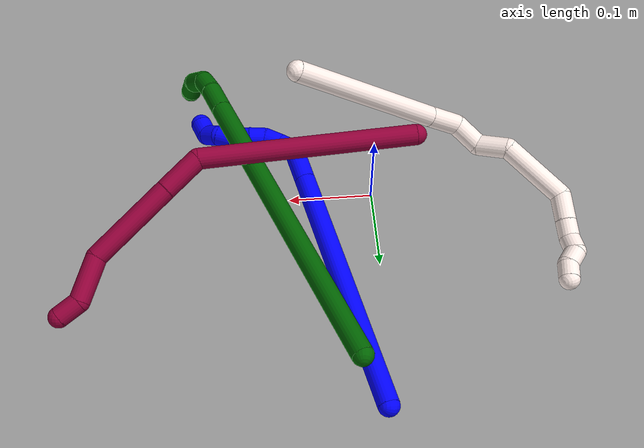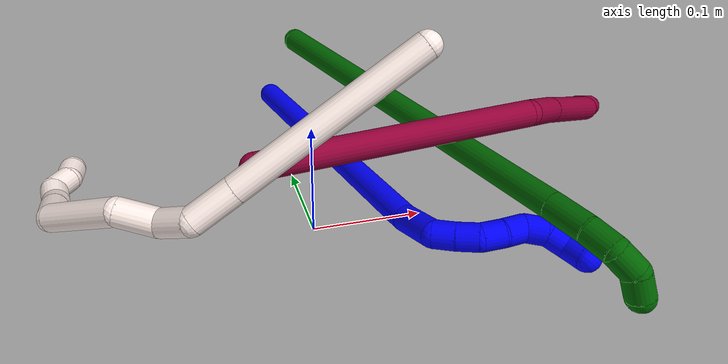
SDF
<sdf version="1.7">
 <world name="default">
  <model name="photoneo_s_sensor">
   <static>1</static>
   <pose>0 0 2 1.57079 1.57079 3.14159</pose>
   <link name="link">
    <inertial><mass>0.1</mass></inertial>
    <sensor name="sensor" type="depth">
     <update_rate>30</update_rate>
     <camera>
      <horizontal_fov>1.22</horizontal_fov>
      <image><width>1920</width><height>1200</height><format>B8G8R8</format></image>
      <clip><near>0.1</near><far>4</far></clip>
      <depth_camera><output>points</output></depth_camera>
     </camera>
     <plugin name="camera_plugin" filename="libgazebo_ros_depth_camera.so">
      <baseline>0.2</baseline>
      <alwaysOn>1</alwaysOn>
      <updateRate>0.0</updateRate>
      <cameraName>camera_ir</cameraName>
      <imageTopicName>/camera/color/image_raw</imageTopicName>
      <cameraInfoTopicName>/camera/color/camera_info</cameraInfoTopicName>
      <depthImageTopicName>/camera/depth/image_raw</depthImageTopicName>
      <depthImageCameraInfoTopicName>/camera/depth/camera_info</depthImageCameraInfoTopicName>
      <pointCloudTopicName>/camera/depth/points</pointCloudTopicName>
      <frameName>fr_optical</frameName>
      <pointCloudCutoff>0.1</pointCloudCutoff>
      <pointCloudCutoffMax>2.0</pointCloudCutoffMax>
      <distortionK1>0</distortionK1>
      <distortionK2>0</distortionK2>
      <distortionK3>0</distortionK3>
      <distortionT1>0</distortionT1>
      <distortionT2>0</distortionT2>
      <CxPrime>0</CxPrime>
      <Cx>0</Cx>
      <Cy>0</Cy>
      <focalLength>0</focalLength>
      <hackBaseline>0</hackBaseline>
     </plugin>
    </sensor>
   </link>
  </model>
  <model name="bin">
   <static>1</static>
   <link name="bottom">
    <collision name="collision-bottom">
     <pose>0 0 -0.01 0 -0 0</pose>
     <geometry><box><size>0.8 0.6 0.02</size></box></geometry>
     <surface>
      <friction><ode><mu>100</mu><mu2>100</mu2></ode></friction>
      <contact><collide_bitmask>65535</collide_bitmask></contact>
     </surface>
    </collision>
   </link>
   <link name="west_wall">
    <collision name="collision-west_wall">
     <pose>-0.41 0 0.1 0 -0 0</pose>
     <geometry><box><size>0.02 0.6 0.2</size></box></geometry>
     <surface>
      <friction><ode><mu>100</mu><mu2>100</mu2></ode></friction>
      <contact><collide_bitmask>65535</collide_bitmask></contact>
     </surface>
    </collision>
   </link>
   <link name="east_wall">
    <collision name="collision-east_wall">
     <pose>0.41 0 0.1 0 -0 0</pose>
     <geometry><box><size>0.02 0.6 0.2</size></box></geometry>
     <surface>
      <friction><ode><mu>100</mu><mu2>100</mu2></ode></friction>
      <contact><collide_bitmask>65535</collide_bitmask></contact>
     </surface>
    </collision>
   </link>
   <link name="south_wall">
    <collision name="collision-south_wall">
     <pose>0 -0.31 0.1 0 -0 0</pose>
     <geometry><box><size>0.8 0.02 0.2</size></box></geometry>
     <surface>
      <friction><ode><mu>100</mu><mu2>100</mu2></ode></friction>
      <contact><collide_bitmask>65535</collide_bitmask></contact>
     </surface>
    </collision>
   </link>
   <link name="north_wall">
    <collision name="collision-north_wall">
     <pose>0 0.31 0.1 0 -0 0</pose>
     <geometry><box><size>0.8 0.02 0.2</size></box></geometry>
     <surface>
      <friction><ode><mu>100</mu><mu2>100</mu2></ode></friction>
      <contact><collide_bitmask>65535</collide_bitmask></contact>
     </surface>
    </collision>
   </link>
  </model>
  <model name="1">
   <static>0</static>
   <link name="1">
    <collision name="collision-cylinder-e_1_1_4">
     <pose>0.009804 -0.155916 0.025654 1.40772 0.061969 0.052611</pose>
     <geometry><cylinder><radius>0.0125</radius><length>0.316633</length></cylinder></geometry>
     <surface>
      <friction><ode><mu>1.16</mu><mu2>1.16</mu2><slip1>0</slip1><slip2>0</slip2></ode></friction>
      <contact><ode><kp>1e+06</kp><kd>1</kd><max_vel>0</max_vel><min_depth>0.001</min_depth></ode></contact>
     </surface>
    </collision>
    <visual name="visual-cylinder-e_1_1_4">
     <pose>0.009804 -0.155916 0.025654 1.40772 0.061969 0.052611</pose>
     <geometry><cylinder><radius>0.0125</radius><length>0.316633</length></cylinder></geometry>
     <material><ambient>0 0 1 1</ambient></material>
    </visual>
    <collision name="collision-cylinder-e_2_4_5">
     <pose>0.023618 -0.333019 0.052096 1.53367 0.186908 0.180133</pose>
     <geometry><cylinder><radius>0.0125</radius><length>0.043155</length></cylinder></geometry>
     <surface>
      <friction><ode><mu>1.16</mu><mu2>1.16</mu2><slip1>0</slip1><slip2>0</slip2></ode></friction>
      <contact><ode><kp>1e+06</kp><kd>1</kd><max_vel>0</max_vel><min_depth>0.001</min_depth></ode></contact>
     </surface>
    </collision>
    <visual name="visual-cylinder-e_2_4_5">
     <pose>0.023618 -0.333019 0.052096 1.53367 0.186908 0.180133</pose>
     <geometry><cylinder><radius>0.0125</radius><length>0.043155</length></cylinder></geometry>
     <material><ambient>0 0 1 1</ambient></material>
    </visual>
    <collision name="collision-cylinder-e_3_5_6">
     <pose>0.024657 -0.362366 0.047778 2.12976 -0.299432 -0.531669</pose>
     <geometry><cylinder><radius>0.0125</radius><length>0.020146</length></cylinder></geometry>
     <surface>
      <friction><ode><mu>1.16</mu><mu2>1.16</mu2><slip1>0</slip1><slip2>0</slip2></ode></friction>
      <contact><ode><kp>1e+06</kp><kd>1</kd><max_vel>0</max_vel><min_depth>0.001</min_depth></ode></contact>
     </surface>
    </collision>
    <visual name="visual-cylinder-e_3_5_6">
     <pose>0.024657 -0.362366 0.047778 2.12976 -0.299432 -0.531669</pose>
     <geometry><cylinder><radius>0.0125</radius><length>0.020146</length></cylinder></geometry>
     <material><ambient>0 0 1 1</ambient></material>
    </visual>
    <collision name="collision-cylinder-e_4_6_7">
     <pose>0.018707 -0.378202 0.036944 2.21209 -0.301434 -0.588231</pose>
     <geometry><cylinder><radius>0.0125</radius><length>0.020063</length></cylinder></geometry>
     <surface>
      <friction><ode><mu>1.16</mu><mu2>1.16</mu2><slip1>0</slip1><slip2>0</slip2></ode></friction>
      <contact><ode><kp>1e+06</kp><kd>1</kd><max_vel>0</max_vel><min_depth>0.001</min_depth></ode></contact>
     </surface>
    </collision>
    <visual name="visual-cylinder-e_4_6_7">
     <pose>0.018707 -0.378202 0.036944 2.21209 -0.301434 -0.588231</pose>
     <geometry><cylinder><radius>0.0125</radius><length>0.020063</length></cylinder></geometry>
     <material><ambient>0 0 1 1</ambient></material>
    </visual>
    <collision name="collision-cylinder-e_5_7_8">
     <pose>0.011252 -0.390191 0.023378 2.63835 -0.464069 -1.4866</pose>
     <geometry><cylinder><radius>0.0125</radius><length>0.020002</length></cylinder></geometry>
     <surface>
      <friction><ode><mu>1.16</mu><mu2>1.16</mu2><slip1>0</slip1><slip2>0</slip2></ode></friction>
      <contact><ode><kp>1e+06</kp><kd>1</kd><max_vel>0</max_vel><min_depth>0.001</min_depth></ode></contact>
     </surface>
    </collision>
    <visual name="visual-cylinder-e_5_7_8">
     <pose>0.011252 -0.390191 0.023378 2.63835 -0.464069 -1.4866</pose>
     <geometry><cylinder><radius>0.0125</radius><length>0.020002</length></cylinder></geometry>
     <material><ambient>0 0 1 1</ambient></material>
    </visual>
    <collision name="collision-cylinder-e_6_8_9">
     <pose>0.001539 -0.397184 0.007456 2.82168 -0.55113 -2.1046</pose>
     <geometry><cylinder><radius>0.0125</radius><length>0.020001</length></cylinder></geometry>
     <surface>
      <friction><ode><mu>1.16</mu><mu2>1.16</mu2><slip1>0</slip1><slip2>0</slip2></ode></friction>
      <contact><ode><kp>1e+06</kp><kd>1</kd><max_vel>0</max_vel><min_depth>0.001</min_depth></ode></contact>
     </surface>
    </collision>
    <visual name="visual-cylinder-e_6_8_9">
     <pose>0.001539 -0.397184 0.007456 2.82168 -0.55113 -2.1046</pose>
     <geometry><cylinder><radius>0.0125</radius><length>0.020001</length></cylinder></geometry>
     <material><ambient>0 0 1 1</ambient></material>
    </visual>
    <collision name="collision-cylinder-e_7_9_10">
     <pose>-0.008178 -0.407282 -0.005619 2.16267 -0.464552 -0.835798</pose>
     <geometry><cylinder><radius>0.0125</radius><length>0.02</length></cylinder></geometry>
     <surface>
      <friction><ode><mu>1.16</mu><mu2>1.16</mu2><slip1>0</slip1><slip2>0</slip2></ode></friction>
      <contact><ode><kp>1e+06</kp><kd>1</kd><max_vel>0</max_vel><min_depth>0.001</min_depth></ode></contact>
     </surface>
    </collision>
    <visual name="visual-cylinder-e_7_9_10">
     <pose>-0.008178 -0.407282 -0.005619 2.16267 -0.464552 -0.835798</pose>
     <geometry><cylinder><radius>0.0125</radius><length>0.02</length></cylinder></geometry>
     <material><ambient>0 0 1 1</ambient></material>
    </visual>
    <collision name="collision-cylinder-e_8_10_11">
     <pose>-0.019474 -0.421891 -0.011972 1.75847 -0.749908 -0.887469</pose>
     <geometry><cylinder><radius>0.0125</radius><length>0.02</length></cylinder></geometry>
     <surface>
      <friction><ode><mu>1.16</mu><mu2>1.16</mu2><slip1>0</slip1><slip2>0</slip2></ode></friction>
      <contact><ode><kp>1e+06</kp><kd>1</kd><max_vel>0</max_vel><min_depth>0.001</min_depth></ode></contact>
     </surface>
    </collision>
    <visual name="visual-cylinder-e_8_10_11">
     <pose>-0.019474 -0.421891 -0.011972 1.75847 -0.749908 -0.887469</pose>
     <geometry><cylinder><radius>0.0125</radius><length>0.02</length></cylinder></geometry>
     <material><ambient>0 0 1 1</ambient></material>
    </visual>
    <collision name="collision-cylinder-e_9_11_2">
     <pose>-0.026848 -0.439032 -0.012536 1.49042 -0.055934 -0.051612</pose>
     <geometry><cylinder><radius>0.0125</radius><length>0.02</length></cylinder></geometry>
     <surface>
      <friction><ode><mu>1.16</mu><mu2>1.16</mu2><slip1>0</slip1><slip2>0</slip2></ode></friction>
      <contact><ode><kp>1e+06</kp><kd>1</kd><max_vel>0</max_vel><min_depth>0.001</min_depth></ode></contact>
     </surface>
    </collision>
    <visual name="visual-cylinder-e_9_11_2">
     <pose>-0.026848 -0.439032 -0.012536 1.49042 -0.055934 -0.051612</pose>
     <geometry><cylinder><radius>0.0125</radius><length>0.02</length></cylinder></geometry>
     <material><ambient>0 0 1 1</ambient></material>
    </visual>
    <collision name="collision-sphere-2">
     <pose>-0.027408 -0.448984 -0.011734 0 -0 0</pose>
     <geometry><sphere><radius>0.0125</radius></sphere></geometry>
     <surface>
      <friction><ode><mu>1.16</mu><mu2>1.16</mu2><slip1>0</slip1><slip2>0</slip2></ode></friction>
      <contact><ode><kp>1e+06</kp><kd>1</kd><max_vel>0</max_vel><min_depth>0.001</min_depth></ode></contact>
     </surface>
    </collision>
    <visual name="visual-sphere-2">
     <pose>-0.027408 -0.448984 -0.011734 0 -0 0</pose>
     <geometry><sphere><radius>0.0125</radius></sphere></geometry>
     <material><ambient>0 0 1 1</ambient></material>
    </visual>
    <collision name="collision-sphere-11">
     <pose>-0.026289 -0.42908 -0.013338 0 -0 0</pose>
     <geometry><sphere><radius>0.0125</radius></sphere></geometry>
     <surface>
      <friction><ode><mu>1.16</mu><mu2>1.16</mu2><slip1>0</slip1><slip2>0</slip2></ode></friction>
      <contact><ode><kp>1e+06</kp><kd>1</kd><max_vel>0</max_vel><min_depth>0.001</min_depth></ode></contact>
     </surface>
    </collision>
    <visual name="visual-sphere-11">
     <pose>-0.026289 -0.42908 -0.013338 0 -0 0</pose>
     <geometry><sphere><radius>0.0125</radius></sphere></geometry>
     <material><ambient>0 0 1 1</ambient></material>
    </visual>
    <collision name="collision-sphere-10">
     <pose>-0.012658 -0.414702 -0.010607 0 -0 0</pose>
     <geometry><sphere><radius>0.0125</radius></sphere></geometry>
     <surface>
      <friction><ode><mu>1.16</mu><mu2>1.16</mu2><slip1>0</slip1><slip2>0</slip2></ode></friction>
      <contact><ode><kp>1e+06</kp><kd>1</kd><max_vel>0</max_vel><min_depth>0.001</min_depth></ode></contact>
     </surface>
    </collision>
    <visual name="visual-sphere-10">
     <pose>-0.012658 -0.414702 -0.010607 0 -0 0</pose>
     <geometry><sphere><radius>0.0125</radius></sphere></geometry>
     <material><ambient>0 0 1 1</ambient></material>
    </visual>
    <collision name="collision-sphere-9">
     <pose>-0.003697 -0.399863 -0.000631 0 -0 0</pose>
     <geometry><sphere><radius>0.0125</radius></sphere></geometry>
     <surface>
      <friction><ode><mu>1.16</mu><mu2>1.16</mu2><slip1>0</slip1><slip2>0</slip2></ode></friction>
      <contact><ode><kp>1e+06</kp><kd>1</kd><max_vel>0</max_vel><min_depth>0.001</min_depth></ode></contact>
     </surface>
    </collision>
    <visual name="visual-sphere-9">
     <pose>-0.003697 -0.399863 -0.000631 0 -0 0</pose>
     <geometry><sphere><radius>0.0125</radius></sphere></geometry>
     <material><ambient>0 0 1 1</ambient></material>
    </visual>
    <collision name="collision-sphere-4">
     <pose>0.019609 -0.311832 0.051309 0 -0 0</pose>
     <geometry><sphere><radius>0.0125</radius></sphere></geometry>
     <surface>
      <friction><ode><mu>1.16</mu><mu2>1.16</mu2><slip1>0</slip1><slip2>0</slip2></ode></friction>
      <contact><ode><kp>1e+06</kp><kd>1</kd><max_vel>0</max_vel><min_depth>0.001</min_depth></ode></contact>
     </surface>
    </collision>
    <visual name="visual-sphere-4">
     <pose>0.019609 -0.311832 0.051309 0 -0 0</pose>
     <geometry><sphere><radius>0.0125</radius></sphere></geometry>
     <material><ambient>0 0 1 1</ambient></material>
    </visual>
    <collision name="collision-sphere-1">
     <geometry><sphere><radius>0.0125</radius></sphere></geometry>
     <surface>
      <friction><ode><mu>1.16</mu><mu2>1.16</mu2><slip1>0</slip1><slip2>0</slip2></ode></friction>
      <contact><ode><kp>1e+06</kp><kd>1</kd><max_vel>0</max_vel><min_depth>0.001</min_depth></ode></contact>
     </surface>
    </collision>
    <visual name="visual-sphere-1">
     <geometry><sphere><radius>0.0125</radius></sphere></geometry>
     <material><ambient>0 0 1 1</ambient></material>
    </visual>
    <collision name="collision-sphere-8">
     <pose>0.006776 -0.394504 0.015544 0 -0 0</pose>
     <geometry><sphere><radius>0.0125</radius></sphere></geometry>
     <surface>
      <friction><ode><mu>1.16</mu><mu2>1.16</mu2><slip1>0</slip1><slip2>0</slip2></ode></friction>
      <contact><ode><kp>1e+06</kp><kd>1</kd><max_vel>0</max_vel><min_depth>0.001</min_depth></ode></contact>
     </surface>
    </collision>
    <visual name="visual-sphere-8">
     <pose>0.006776 -0.394504 0.015544 0 -0 0</pose>
     <geometry><sphere><radius>0.0125</radius></sphere></geometry>
     <material><ambient>0 0 1 1</ambient></material>
    </visual>
    <collision name="collision-sphere-5">
     <pose>0.027628 -0.354206 0.052882 0 -0 0</pose>
     <geometry><sphere><radius>0.0125</radius></sphere></geometry>
     <surface>
      <friction><ode><mu>1.16</mu><mu2>1.16</mu2><slip1>0</slip1><slip2>0</slip2></ode></friction>
      <contact><ode><kp>1e+06</kp><kd>1</kd><max_vel>0</max_vel><min_depth>0.001</min_depth></ode></contact>
     </surface>
    </collision>
    <visual name="visual-sphere-5">
     <pose>0.027628 -0.354206 0.052882 0 -0 0</pose>
     <geometry><sphere><radius>0.0125</radius></sphere></geometry>
     <material><ambient>0 0 1 1</ambient></material>
    </visual>
    <collision name="collision-sphere-6">
     <pose>0.021685 -0.370526 0.042674 0 -0 0</pose>
     <geometry><sphere><radius>0.0125</radius></sphere></geometry>
     <surface>
      <friction><ode><mu>1.16</mu><mu2>1.16</mu2><slip1>0</slip1><slip2>0</slip2></ode></friction>
      <contact><ode><kp>1e+06</kp><kd>1</kd><max_vel>0</max_vel><min_depth>0.001</min_depth></ode></contact>
     </surface>
    </collision>
    <visual name="visual-sphere-6">
     <pose>0.021685 -0.370526 0.042674 0 -0 0</pose>
     <geometry><sphere><radius>0.0125</radius></sphere></geometry>
     <material><ambient>0 0 1 1</ambient></material>
    </visual>
    <collision name="collision-sphere-7">
     <pose>0.015729 -0.385878 0.031213 0 -0 0</pose>
     <geometry><sphere><radius>0.0125</radius></sphere></geometry>
     <surface>
      <friction><ode><mu>1.16</mu><mu2>1.16</mu2><slip1>0</slip1><slip2>0</slip2></ode></friction>
      <contact><ode><kp>1e+06</kp><kd>1</kd><max_vel>0</max_vel><min_depth>0.001</min_depth></ode></contact>
     </surface>
    </collision>
    <visual name="visual-sphere-7">
     <pose>0.015729 -0.385878 0.031213 0 -0 0</pose>
     <geometry><sphere><radius>0.0125</radius></sphere></geometry>
     <material><ambient>0 0 1 1</ambient></material>
    </visual>
    <inertial>
     <pose>0.008323 -0.239481 0.024178 0 -0 0</pose>
     <mass>0.5</mass>
     <inertia>
      <ixx>0.002795</ixx>
      <ixy>0</ixy>
      <ixz>0</ixz>
      <iyy>0.000541</iyy>
      <iyz>0</iyz>
      <izz>0.002469</izz>
     </inertia>
    </inertial>
   </link>
   <pose>0.011131 0.28751 0.011498 -3.07125 -0.987084 -2.81303</pose>
  </model>
  <model name="6">
   <static>0</static>
   <link name="6">
    <collision name="collision-cylinder-e_1_1_4">
     <pose>-0.043871 -0.049009 -0.184927 2.88253 -0.225422 -1.43079</pose>
     <geometry><cylinder><radius>0.0125</radius><length>0.392554</length></cylinder></geometry>
     <surface>
      <friction><ode><mu>1.16</mu><mu2>1.16</mu2><slip1>0</slip1><slip2>0</slip2></ode></friction>
      <contact><ode><kp>1e+06</kp><kd>1</kd><max_vel>0</max_vel><min_depth>0.001</min_depth></ode></contact>
     </surface>
    </collision>
    <visual name="visual-cylinder-e_1_1_4">
     <pose>-0.043871 -0.049009 -0.184927 2.88253 -0.225422 -1.43079</pose>
     <geometry><cylinder><radius>0.0125</radius><length>0.392554</length></cylinder></geometry>
     <material><ambient>0 0.392157 0.003922 1</ambient></material>
    </visual>
    <collision name="collision-cylinder-e_2_4_5">
     <pose>-0.091534 -0.10266 -0.387362 2.88242 -0.20634 -1.34277</pose>
     <geometry><cylinder><radius>0.0125</radius><length>0.037011</length></cylinder></geometry>
     <surface>
      <friction><ode><mu>1.16</mu><mu2>1.16</mu2><slip1>0</slip1><slip2>0</slip2></ode></friction>
      <contact><ode><kp>1e+06</kp><kd>1</kd><max_vel>0</max_vel><min_depth>0.001</min_depth></ode></contact>
     </surface>
    </collision>
    <visual name="visual-cylinder-e_2_4_5">
     <pose>-0.091534 -0.10266 -0.387362 2.88242 -0.20634 -1.34277</pose>
     <geometry><cylinder><radius>0.0125</radius><length>0.037011</length></cylinder></geometry>
     <material><ambient>0 0.392157 0.003922 1</ambient></material>
    </visual>
    <collision name="collision-cylinder-e_3_5_6">
     <pose>-0.097036 -0.112108 -0.416479 2.7491 -0.135302 -0.656923</pose>
     <geometry><cylinder><radius>0.0125</radius><length>0.02536</length></cylinder></geometry>
     <surface>
      <friction><ode><mu>1.16</mu><mu2>1.16</mu2><slip1>0</slip1><slip2>0</slip2></ode></friction>
      <contact><ode><kp>1e+06</kp><kd>1</kd><max_vel>0</max_vel><min_depth>0.001</min_depth></ode></contact>
     </surface>
    </collision>
    <visual name="visual-cylinder-e_3_5_6">
     <pose>-0.097036 -0.112108 -0.416479 2.7491 -0.135302 -0.656923</pose>
     <geometry><cylinder><radius>0.0125</radius><length>0.02536</length></cylinder></geometry>
     <material><ambient>0 0.392157 0.003922 1</ambient></material>
    </visual>
    <collision name="collision-cylinder-e_4_6_7">
     <pose>-0.09775 -0.126304 -0.434389 2.16181 0.087836 0.164452</pose>
     <geometry><cylinder><radius>0.0125</radius><length>0.022705</length></cylinder></geometry>
     <surface>
      <friction><ode><mu>1.16</mu><mu2>1.16</mu2><slip1>0</slip1><slip2>0</slip2></ode></friction>
      <contact><ode><kp>1e+06</kp><kd>1</kd><max_vel>0</max_vel><min_depth>0.001</min_depth></ode></contact>
     </surface>
    </collision>
    <visual name="visual-cylinder-e_4_6_7">
     <pose>-0.09775 -0.126304 -0.434389 2.16181 0.087836 0.164452</pose>
     <geometry><cylinder><radius>0.0125</radius><length>0.022705</length></cylinder></geometry>
     <material><ambient>0 0.392157 0.003922 1</ambient></material>
    </visual>
    <collision name="collision-cylinder-e_5_7_2">
     <pose>-0.090506 -0.144437 -0.443793 1.91181 0.5928 0.816303</pose>
     <geometry><cylinder><radius>0.0125</radius><length>0.02237</length></cylinder></geometry>
     <surface>
      <friction><ode><mu>1.16</mu><mu2>1.16</mu2><slip1>0</slip1><slip2>0</slip2></ode></friction>
      <contact><ode><kp>1e+06</kp><kd>1</kd><max_vel>0</max_vel><min_depth>0.001</min_depth></ode></contact>
     </surface>
    </collision>
    <visual name="visual-cylinder-e_5_7_2">
     <pose>-0.090506 -0.144437 -0.443793 1.91181 0.5928 0.816303</pose>
     <geometry><cylinder><radius>0.0125</radius><length>0.02237</length></cylinder></geometry>
     <material><ambient>0 0.392157 0.003922 1</ambient></material>
    </visual>
    <collision name="collision-sphere-2">
     <pose>-0.084257 -0.153179 -0.446896 0 -0 0</pose>
     <geometry><sphere><radius>0.0125</radius></sphere></geometry>
     <surface>
      <friction><ode><mu>1.16</mu><mu2>1.16</mu2><slip1>0</slip1><slip2>0</slip2></ode></friction>
      <contact><ode><kp>1e+06</kp><kd>1</kd><max_vel>0</max_vel><min_depth>0.001</min_depth></ode></contact>
     </surface>
    </collision>
    <visual name="visual-sphere-2">
     <pose>-0.084257 -0.153179 -0.446896 0 -0 0</pose>
     <geometry><sphere><radius>0.0125</radius></sphere></geometry>
     <material><ambient>0 0.392157 0.003922 1</ambient></material>
    </visual>
    <collision name="collision-sphere-7">
     <pose>-0.096754 -0.135695 -0.440691 0 -0 0</pose>
     <geometry><sphere><radius>0.0125</radius></sphere></geometry>
     <surface>
      <friction><ode><mu>1.16</mu><mu2>1.16</mu2><slip1>0</slip1><slip2>0</slip2></ode></friction>
      <contact><ode><kp>1e+06</kp><kd>1</kd><max_vel>0</max_vel><min_depth>0.001</min_depth></ode></contact>
     </surface>
    </collision>
    <visual name="visual-sphere-7">
     <pose>-0.096754 -0.135695 -0.440691 0 -0 0</pose>
     <geometry><sphere><radius>0.0125</radius></sphere></geometry>
     <material><ambient>0 0.392157 0.003922 1</ambient></material>
    </visual>
    <collision name="collision-sphere-6">
     <pose>-0.098746 -0.116913 -0.428088 0 -0 0</pose>
     <geometry><sphere><radius>0.0125</radius></sphere></geometry>
     <surface>
      <friction><ode><mu>1.16</mu><mu2>1.16</mu2><slip1>0</slip1><slip2>0</slip2></ode></friction>
      <contact><ode><kp>1e+06</kp><kd>1</kd><max_vel>0</max_vel><min_depth>0.001</min_depth></ode></contact>
     </surface>
    </collision>
    <visual name="visual-sphere-6">
     <pose>-0.098746 -0.116913 -0.428088 0 -0 0</pose>
     <geometry><sphere><radius>0.0125</radius></sphere></geometry>
     <material><ambient>0 0.392157 0.003922 1</ambient></material>
    </visual>
    <collision name="collision-sphere-5">
     <pose>-0.095325 -0.107302 -0.404871 0 -0 0</pose>
     <geometry><sphere><radius>0.0125</radius></sphere></geometry>
     <surface>
      <friction><ode><mu>1.16</mu><mu2>1.16</mu2><slip1>0</slip1><slip2>0</slip2></ode></friction>
      <contact><ode><kp>1e+06</kp><kd>1</kd><max_vel>0</max_vel><min_depth>0.001</min_depth></ode></contact>
     </surface>
    </collision>
    <visual name="visual-sphere-5">
     <pose>-0.095325 -0.107302 -0.404871 0 -0 0</pose>
     <geometry><sphere><radius>0.0125</radius></sphere></geometry>
     <material><ambient>0 0.392157 0.003922 1</ambient></material>
    </visual>
    <collision name="collision-sphere-1">
     <geometry><sphere><radius>0.0125</radius></sphere></geometry>
     <surface>
      <friction><ode><mu>1.16</mu><mu2>1.16</mu2><slip1>0</slip1><slip2>0</slip2></ode></friction>
      <contact><ode><kp>1e+06</kp><kd>1</kd><max_vel>0</max_vel><min_depth>0.001</min_depth></ode></contact>
     </surface>
    </collision>
    <visual name="visual-sphere-1">
     <geometry><sphere><radius>0.0125</radius></sphere></geometry>
     <material><ambient>0 0.392157 0.003922 1</ambient></material>
    </visual>
    <collision name="collision-sphere-4">
     <pose>-0.087743 -0.098018 -0.369854 0 -0 0</pose>
     <geometry><sphere><radius>0.0125</radius></sphere></geometry>
     <surface>
      <friction><ode><mu>1.16</mu><mu2>1.16</mu2><slip1>0</slip1><slip2>0</slip2></ode></friction>
      <contact><ode><kp>1e+06</kp><kd>1</kd><max_vel>0</max_vel><min_depth>0.001</min_depth></ode></contact>
     </surface>
    </collision>
    <visual name="visual-sphere-4">
     <pose>-0.087743 -0.098018 -0.369854 0 -0 0</pose>
     <geometry><sphere><radius>0.0125</radius></sphere></geometry>
     <material><ambient>0 0.392157 0.003922 1</ambient></material>
    </visual>
    <inertial>
     <pose>-0.054629 -0.06396 -0.234566 0 -0 0</pose>
     <mass>0.5</mass>
     <inertia>
      <ixx>-0.004198</ixx>
      <ixy>0</ixy>
      <ixz>0</ixz>
      <iyy>-0.005296</iyy>
      <iyz>0</iyz>
      <izz>0.002363</izz>
     </inertia>
    </inertial>
   </link>
   <pose>0.039264 0.264581 0.087035 1.4287 0.868394 3.04468</pose>
  </model>
  <model name="8">
   <static>0</static>
   <link name="8">
    <collision name="collision-cylinder-e_1_1_4">
     <pose>0.057897 0.034403 0.109572 -0.30423 0.466947 -0.07288</pose>
     <geometry><cylinder><radius>0.0125</radius><length>0.257228</length></cylinder></geometry>
     <surface>
      <friction><ode><mu>1.16</mu><mu2>1.16</mu2><slip1>0</slip1><slip2>0</slip2></ode></friction>
      <contact><ode><kp>1e+06</kp><kd>1</kd><max_vel>0</max_vel><min_depth>0.001</min_depth></ode></contact>
     </surface>
    </collision>
    <visual name="visual-cylinder-e_1_1_4">
     <pose>0.057897 0.034403 0.109572 -0.30423 0.466947 -0.07288</pose>
     <geometry><cylinder><radius>0.0125</radius><length>0.257228</length></cylinder></geometry>
     <material><ambient>0.584314 0 0.227451 1</ambient></material>
    </visual>
    <collision name="collision-cylinder-e_2_4_5">
     <pose>0.137767 0.066613 0.231886 0.170402 1.03889 0.097599</pose>
     <geometry><cylinder><radius>0.0125</radius><length>0.050989</length></cylinder></geometry>
     <surface>
      <friction><ode><mu>1.16</mu><mu2>1.16</mu2><slip1>0</slip1><slip2>0</slip2></ode></friction>
      <contact><ode><kp>1e+06</kp><kd>1</kd><max_vel>0</max_vel><min_depth>0.001</min_depth></ode></contact>
     </surface>
    </collision>
    <visual name="visual-cylinder-e_2_4_5">
     <pose>0.137767 0.066613 0.231886 0.170402 1.03889 0.097599</pose>
     <geometry><cylinder><radius>0.0125</radius><length>0.050989</length></cylinder></geometry>
     <material><ambient>0.584314 0 0.227451 1</ambient></material>
    </visual>
    <collision name="collision-cylinder-e_3_5_6">
     <pose>0.205948 0.05787 0.272781 0.228614 1.01183 0.127038</pose>
     <geometry><cylinder><radius>0.0125</radius><length>0.109009</length></cylinder></geometry>
     <surface>
      <friction><ode><mu>1.16</mu><mu2>1.16</mu2><slip1>0</slip1><slip2>0</slip2></ode></friction>
      <contact><ode><kp>1e+06</kp><kd>1</kd><max_vel>0</max_vel><min_depth>0.001</min_depth></ode></contact>
     </surface>
    </collision>
    <visual name="visual-cylinder-e_3_5_6">
     <pose>0.205948 0.05787 0.272781 0.228614 1.01183 0.127038</pose>
     <geometry><cylinder><radius>0.0125</radius><length>0.109009</length></cylinder></geometry>
     <material><ambient>0.584314 0 0.227451 1</ambient></material>
    </visual>
    <collision name="collision-cylinder-e_4_6_7">
     <pose>0.278367 0.044572 0.303535 1.20283 1.30159 0.963016</pose>
     <geometry><cylinder><radius>0.0125</radius><length>0.05438</length></cylinder></geometry>
     <surface>
      <friction><ode><mu>1.16</mu><mu2>1.16</mu2><slip1>0</slip1><slip2>0</slip2></ode></friction>
      <contact><ode><kp>1e+06</kp><kd>1</kd><max_vel>0</max_vel><min_depth>0.001</min_depth></ode></contact>
     </surface>
    </collision>
    <visual name="visual-cylinder-e_4_6_7">
     <pose>0.278367 0.044572 0.303535 1.20283 1.30159 0.963016</pose>
     <geometry><cylinder><radius>0.0125</radius><length>0.05438</length></cylinder></geometry>
     <material><ambient>0.584314 0 0.227451 1</ambient></material>
    </visual>
    <collision name="collision-cylinder-e_5_7_2">
     <pose>0.315674 0.036852 0.314939 0.110105 0.897188 0.053037</pose>
     <geometry><cylinder><radius>0.0125</radius><length>0.028395</length></cylinder></geometry>
     <surface>
      <friction><ode><mu>1.16</mu><mu2>1.16</mu2><slip1>0</slip1><slip2>0</slip2></ode></friction>
      <contact><ode><kp>1e+06</kp><kd>1</kd><max_vel>0</max_vel><min_depth>0.001</min_depth></ode></contact>
     </surface>
    </collision>
    <visual name="visual-cylinder-e_5_7_2">
     <pose>0.315674 0.036852 0.314939 0.110105 0.897188 0.053037</pose>
     <geometry><cylinder><radius>0.0125</radius><length>0.028395</length></cylinder></geometry>
     <material><ambient>0.584314 0 0.227451 1</ambient></material>
    </visual>
    <collision name="collision-sphere-2">
     <pose>0.32677 0.035878 0.323742 0 -0 0</pose>
     <geometry><sphere><radius>0.0125</radius></sphere></geometry>
     <surface>
      <friction><ode><mu>1.16</mu><mu2>1.16</mu2><slip1>0</slip1><slip2>0</slip2></ode></friction>
      <contact><ode><kp>1e+06</kp><kd>1</kd><max_vel>0</max_vel><min_depth>0.001</min_depth></ode></contact>
     </surface>
    </collision>
    <visual name="visual-sphere-2">
     <pose>0.32677 0.035878 0.323742 0 -0 0</pose>
     <geometry><sphere><radius>0.0125</radius></sphere></geometry>
     <material><ambient>0.584314 0 0.227451 1</ambient></material>
    </visual>
    <collision name="collision-sphere-7">
     <pose>0.304578 0.037825 0.306136 0 -0 0</pose>
     <geometry><sphere><radius>0.0125</radius></sphere></geometry>
     <surface>
      <friction><ode><mu>1.16</mu><mu2>1.16</mu2><slip1>0</slip1><slip2>0</slip2></ode></friction>
      <contact><ode><kp>1e+06</kp><kd>1</kd><max_vel>0</max_vel><min_depth>0.001</min_depth></ode></contact>
     </surface>
    </collision>
    <visual name="visual-sphere-7">
     <pose>0.304578 0.037825 0.306136 0 -0 0</pose>
     <geometry><sphere><radius>0.0125</radius></sphere></geometry>
     <material><ambient>0.584314 0 0.227451 1</ambient></material>
    </visual>
    <collision name="collision-sphere-6">
     <pose>0.252157 0.05132 0.300933 0 -0 0</pose>
     <geometry><sphere><radius>0.0125</radius></sphere></geometry>
     <surface>
      <friction><ode><mu>1.16</mu><mu2>1.16</mu2><slip1>0</slip1><slip2>0</slip2></ode></friction>
      <contact><ode><kp>1e+06</kp><kd>1</kd><max_vel>0</max_vel><min_depth>0.001</min_depth></ode></contact>
     </surface>
    </collision>
    <visual name="visual-sphere-6">
     <pose>0.252157 0.05132 0.300933 0 -0 0</pose>
     <geometry><sphere><radius>0.0125</radius></sphere></geometry>
     <material><ambient>0.584314 0 0.227451 1</ambient></material>
    </visual>
    <collision name="collision-sphere-5">
     <pose>0.159739 0.064421 0.244629 0 -0 0</pose>
     <geometry><sphere><radius>0.0125</radius></sphere></geometry>
     <surface>
      <friction><ode><mu>1.16</mu><mu2>1.16</mu2><slip1>0</slip1><slip2>0</slip2></ode></friction>
      <contact><ode><kp>1e+06</kp><kd>1</kd><max_vel>0</max_vel><min_depth>0.001</min_depth></ode></contact>
     </surface>
    </collision>
    <visual name="visual-sphere-5">
     <pose>0.159739 0.064421 0.244629 0 -0 0</pose>
     <geometry><sphere><radius>0.0125</radius></sphere></geometry>
     <material><ambient>0.584314 0 0.227451 1</ambient></material>
    </visual>
    <collision name="collision-sphere-1">
     <geometry><sphere><radius>0.0125</radius></sphere></geometry>
     <surface>
      <friction><ode><mu>1.16</mu><mu2>1.16</mu2><slip1>0</slip1><slip2>0</slip2></ode></friction>
      <contact><ode><kp>1e+06</kp><kd>1</kd><max_vel>0</max_vel><min_depth>0.001</min_depth></ode></contact>
     </surface>
    </collision>
    <visual name="visual-sphere-1">
     <geometry><sphere><radius>0.0125</radius></sphere></geometry>
     <material><ambient>0.584314 0 0.227451 1</ambient></material>
    </visual>
    <collision name="collision-sphere-4">
     <pose>0.115794 0.068806 0.219143 0 -0 0</pose>
     <geometry><sphere><radius>0.0125</radius></sphere></geometry>
     <surface>
      <friction><ode><mu>1.16</mu><mu2>1.16</mu2><slip1>0</slip1><slip2>0</slip2></ode></friction>
      <contact><ode><kp>1e+06</kp><kd>1</kd><max_vel>0</max_vel><min_depth>0.001</min_depth></ode></contact>
     </surface>
    </collision>
    <visual name="visual-sphere-4">
     <pose>0.115794 0.068806 0.219143 0 -0 0</pose>
     <geometry><sphere><radius>0.0125</radius></sphere></geometry>
     <material><ambient>0.584314 0 0.227451 1</ambient></material>
    </visual>
    <inertial>
     <pose>0.136937 0.044049 0.190385 0 -0 0</pose>
     <mass>0.5</mass>
     <inertia>
      <ixx>0.001286</ixx>
      <ixy>0</ixy>
      <ixz>0</ixz>
      <iyy>0.001437</iyy>
      <iyz>0</iyz>
      <izz>-0.001105</izz>
     </inertia>
    </inertial>
   </link>
   <pose>-0.052831 -0.023261 0.083845 1.78487 0.115348 1.18151</pose>
  </model>
  <model name="11">
   <static>0</static>
   <link name="11">
    <collision name="collision-cylinder-e_1_1_4">
     <pose>-0.051332 0.009587 0.077049 -0.123792 -0.584159 0.037265</pose>
     <geometry><cylinder><radius>0.0125</radius><length>0.186156</length></cylinder></geometry>
     <surface>
      <friction><ode><mu>1.16</mu><mu2>1.16</mu2><slip1>0</slip1><slip2>0</slip2></ode></friction>
      <contact><ode><kp>1e+06</kp><kd>1</kd><max_vel>0</max_vel><min_depth>0.001</min_depth></ode></contact>
     </surface>
    </collision>
    <visual name="visual-cylinder-e_1_1_4">
     <pose>-0.051332 0.009587 0.077049 -0.123792 -0.584159 0.037265</pose>
     <geometry><cylinder><radius>0.0125</radius><length>0.186156</length></cylinder></geometry>
     <material><ambient>1 0.933333 0.909804 1</ambient></material>
    </visual>
    <collision name="collision-cylinder-e_2_4_5">
     <pose>-0.11366 0.021457 0.171345 -0.13161 -0.563623 0.038154</pose>
     <geometry><cylinder><radius>0.0125</radius><length>0.041162</length></cylinder></geometry>
     <surface>
      <friction><ode><mu>1.16</mu><mu2>1.16</mu2><slip1>0</slip1><slip2>0</slip2></ode></friction>
      <contact><ode><kp>1e+06</kp><kd>1</kd><max_vel>0</max_vel><min_depth>0.001</min_depth></ode></contact>
     </surface>
    </collision>
    <visual name="visual-cylinder-e_2_4_5">
     <pose>-0.11366 0.021457 0.171345 -0.13161 -0.563623 0.038154</pose>
     <geometry><cylinder><radius>0.0125</radius><length>0.041162</length></cylinder></geometry>
     <material><ambient>1 0.933333 0.909804 1</ambient></material>
    </visual>
    <collision name="collision-cylinder-e_3_5_6">
     <pose>-0.140087 0.031456 0.192757 -1.07584 -1.05412 0.668374</pose>
     <geometry><cylinder><radius>0.0125</radius><length>0.035496</length></cylinder></geometry>
     <surface>
      <friction><ode><mu>1.16</mu><mu2>1.16</mu2><slip1>0</slip1><slip2>0</slip2></ode></friction>
      <contact><ode><kp>1e+06</kp><kd>1</kd><max_vel>0</max_vel><min_depth>0.001</min_depth></ode></contact>
     </surface>
    </collision>
    <visual name="visual-cylinder-e_3_5_6">
     <pose>-0.140087 0.031456 0.192757 -1.07584 -1.05412 0.668374</pose>
     <geometry><cylinder><radius>0.0125</radius><length>0.035496</length></cylinder></geometry>
     <material><ambient>1 0.933333 0.909804 1</ambient></material>
    </visual>
    <collision name="collision-cylinder-e_4_6_7">
     <pose>-0.162542 0.054587 0.204421 -1.118 -0.388848 0.245123</pose>
     <geometry><cylinder><radius>0.0125</radius><length>0.037052</length></cylinder></geometry>
     <surface>
      <friction><ode><mu>1.16</mu><mu2>1.16</mu2><slip1>0</slip1><slip2>0</slip2></ode></friction>
      <contact><ode><kp>1e+06</kp><kd>1</kd><max_vel>0</max_vel><min_depth>0.001</min_depth></ode></contact>
     </surface>
    </collision>
    <visual name="visual-cylinder-e_4_6_7">
     <pose>-0.162542 0.054587 0.204421 -1.118 -0.388848 0.245123</pose>
     <geometry><cylinder><radius>0.0125</radius><length>0.037052</length></cylinder></geometry>
     <material><ambient>1 0.933333 0.909804 1</ambient></material>
    </visual>
    <collision name="collision-cylinder-e_5_7_8">
     <pose>-0.205375 0.088098 0.223249 -1.01148 -1.0332 0.609557</pose>
     <geometry><cylinder><radius>0.0125</radius><length>0.083381</length></cylinder></geometry>
     <surface>
      <friction><ode><mu>1.16</mu><mu2>1.16</mu2><slip1>0</slip1><slip2>0</slip2></ode></friction>
      <contact><ode><kp>1e+06</kp><kd>1</kd><max_vel>0</max_vel><min_depth>0.001</min_depth></ode></contact>
     </surface>
    </collision>
    <visual name="visual-cylinder-e_5_7_8">
     <pose>-0.205375 0.088098 0.223249 -1.01148 -1.0332 0.609557</pose>
     <geometry><cylinder><radius>0.0125</radius><length>0.083381</length></cylinder></geometry>
     <material><ambient>1 0.933333 0.909804 1</ambient></material>
    </visual>
    <collision name="collision-cylinder-e_6_8_9">
     <pose>-0.255597 0.11054 0.227089 -2.61554 -1.02984 2.25327</pose>
     <geometry><cylinder><radius>0.0125</radius><length>0.033626</length></cylinder></geometry>
     <surface>
      <friction><ode><mu>1.16</mu><mu2>1.16</mu2><slip1>0</slip1><slip2>0</slip2></ode></friction>
      <contact><ode><kp>1e+06</kp><kd>1</kd><max_vel>0</max_vel><min_depth>0.001</min_depth></ode></contact>
     </surface>
    </collision>
    <visual name="visual-cylinder-e_6_8_9">
     <pose>-0.255597 0.11054 0.227089 -2.61554 -1.02984 2.25327</pose>
     <geometry><cylinder><radius>0.0125</radius><length>0.033626</length></cylinder></geometry>
     <material><ambient>1 0.933333 0.909804 1</ambient></material>
    </visual>
    <collision name="collision-cylinder-e_7_9_10">
     <pose>-0.279539 0.117378 0.215247 -2.62207 -1.08622 2.31215</pose>
     <geometry><cylinder><radius>0.0125</radius><length>0.02154</length></cylinder></geometry>
     <surface>
      <friction><ode><mu>1.16</mu><mu2>1.16</mu2><slip1>0</slip1><slip2>0</slip2></ode></friction>
      <contact><ode><kp>1e+06</kp><kd>1</kd><max_vel>0</max_vel><min_depth>0.001</min_depth></ode></contact>
     </surface>
    </collision>
    <visual name="visual-cylinder-e_7_9_10">
     <pose>-0.279539 0.117378 0.215247 -2.62207 -1.08622 2.31215</pose>
     <geometry><cylinder><radius>0.0125</radius><length>0.02154</length></cylinder></geometry>
     <material><ambient>1 0.933333 0.909804 1</ambient></material>
    </visual>
    <collision name="collision-cylinder-e_8_10_11">
     <pose>-0.295829 0.125587 0.205817 -2.29666 -0.724016 1.40016</pose>
     <geometry><cylinder><radius>0.0125</radius><length>0.02041</length></cylinder></geometry>
     <surface>
      <friction><ode><mu>1.16</mu><mu2>1.16</mu2><slip1>0</slip1><slip2>0</slip2></ode></friction>
      <contact><ode><kp>1e+06</kp><kd>1</kd><max_vel>0</max_vel><min_depth>0.001</min_depth></ode></contact>
     </surface>
    </collision>
    <visual name="visual-cylinder-e_8_10_11">
     <pose>-0.295829 0.125587 0.205817 -2.29666 -0.724016 1.40016</pose>
     <geometry><cylinder><radius>0.0125</radius><length>0.02041</length></cylinder></geometry>
     <material><ambient>1 0.933333 0.909804 1</ambient></material>
    </visual>
    <collision name="collision-cylinder-e_9_11_12">
     <pose>-0.306858 0.13139 0.191059 -3.13279 -0.415178 3.09978</pose>
     <geometry><cylinder><radius>0.0125</radius><length>0.021166</length></cylinder></geometry>
     <surface>
      <friction><ode><mu>1.16</mu><mu2>1.16</mu2><slip1>0</slip1><slip2>0</slip2></ode></friction>
      <contact><ode><kp>1e+06</kp><kd>1</kd><max_vel>0</max_vel><min_depth>0.001</min_depth></ode></contact>
     </surface>
    </collision>
    <visual name="visual-cylinder-e_9_11_12">
     <pose>-0.306858 0.13139 0.191059 -3.13279 -0.415178 3.09978</pose>
     <geometry><cylinder><radius>0.0125</radius><length>0.021166</length></cylinder></geometry>
     <material><ambient>1 0.933333 0.909804 1</ambient></material>
    </visual>
    <collision name="collision-cylinder-e_10_12_2">
     <pose>-0.317905 0.13484 0.17483 -2.66677 -0.7443 2.03174</pose>
     <geometry><cylinder><radius>0.0125</radius><length>0.020011</length></cylinder></geometry>
     <surface>
      <friction><ode><mu>1.16</mu><mu2>1.16</mu2><slip1>0</slip1><slip2>0</slip2></ode></friction>
      <contact><ode><kp>1e+06</kp><kd>1</kd><max_vel>0</max_vel><min_depth>0.001</min_depth></ode></contact>
     </surface>
    </collision>
    <visual name="visual-cylinder-e_10_12_2">
     <pose>-0.317905 0.13484 0.17483 -2.66677 -0.7443 2.03174</pose>
     <geometry><cylinder><radius>0.0125</radius><length>0.020011</length></cylinder></geometry>
     <material><ambient>1 0.933333 0.909804 1</ambient></material>
    </visual>
    <collision name="collision-sphere-2">
     <pose>-0.324683 0.138205 0.168284 0 -0 0</pose>
     <geometry><sphere><radius>0.0125</radius></sphere></geometry>
     <surface>
      <friction><ode><mu>1.16</mu><mu2>1.16</mu2><slip1>0</slip1><slip2>0</slip2></ode></friction>
      <contact><ode><kp>1e+06</kp><kd>1</kd><max_vel>0</max_vel><min_depth>0.001</min_depth></ode></contact>
     </surface>
    </collision>
    <visual name="visual-sphere-2">
     <pose>-0.324683 0.138205 0.168284 0 -0 0</pose>
     <geometry><sphere><radius>0.0125</radius></sphere></geometry>
     <material><ambient>1 0.933333 0.909804 1</ambient></material>
    </visual>
    <collision name="collision-sphere-12">
     <pose>-0.311127 0.131476 0.181375 0 -0 0</pose>
     <geometry><sphere><radius>0.0125</radius></sphere></geometry>
     <surface>
      <friction><ode><mu>1.16</mu><mu2>1.16</mu2><slip1>0</slip1><slip2>0</slip2></ode></friction>
      <contact><ode><kp>1e+06</kp><kd>1</kd><max_vel>0</max_vel><min_depth>0.001</min_depth></ode></contact>
     </surface>
    </collision>
    <visual name="visual-sphere-12">
     <pose>-0.311127 0.131476 0.181375 0 -0 0</pose>
     <geometry><sphere><radius>0.0125</radius></sphere></geometry>
     <material><ambient>1 0.933333 0.909804 1</ambient></material>
    </visual>
    <collision name="collision-sphere-11">
     <pose>-0.302589 0.131305 0.200742 0 -0 0</pose>
     <geometry><sphere><radius>0.0125</radius></sphere></geometry>
     <surface>
      <friction><ode><mu>1.16</mu><mu2>1.16</mu2><slip1>0</slip1><slip2>0</slip2></ode></friction>
      <contact><ode><kp>1e+06</kp><kd>1</kd><max_vel>0</max_vel><min_depth>0.001</min_depth></ode></contact>
     </surface>
    </collision>
    <visual name="visual-sphere-11">
     <pose>-0.302589 0.131305 0.200742 0 -0 0</pose>
     <geometry><sphere><radius>0.0125</radius></sphere></geometry>
     <material><ambient>1 0.933333 0.909804 1</ambient></material>
    </visual>
    <collision name="collision-sphere-10">
     <pose>-0.28907 0.119869 0.210892 0 -0 0</pose>
     <geometry><sphere><radius>0.0125</radius></sphere></geometry>
     <surface>
      <friction><ode><mu>1.16</mu><mu2>1.16</mu2><slip1>0</slip1><slip2>0</slip2></ode></friction>
      <contact><ode><kp>1e+06</kp><kd>1</kd><max_vel>0</max_vel><min_depth>0.001</min_depth></ode></contact>
     </surface>
    </collision>
    <visual name="visual-sphere-10">
     <pose>-0.28907 0.119869 0.210892 0 -0 0</pose>
     <geometry><sphere><radius>0.0125</radius></sphere></geometry>
     <material><ambient>1 0.933333 0.909804 1</ambient></material>
    </visual>
    <collision name="collision-sphere-9">
     <pose>-0.270009 0.114888 0.219602 0 -0 0</pose>
     <geometry><sphere><radius>0.0125</radius></sphere></geometry>
     <surface>
      <friction><ode><mu>1.16</mu><mu2>1.16</mu2><slip1>0</slip1><slip2>0</slip2></ode></friction>
      <contact><ode><kp>1e+06</kp><kd>1</kd><max_vel>0</max_vel><min_depth>0.001</min_depth></ode></contact>
     </surface>
    </collision>
    <visual name="visual-sphere-9">
     <pose>-0.270009 0.114888 0.219602 0 -0 0</pose>
     <geometry><sphere><radius>0.0125</radius></sphere></geometry>
     <material><ambient>1 0.933333 0.909804 1</ambient></material>
    </visual>
    <collision name="collision-sphere-4">
     <pose>-0.102665 0.019174 0.154098 0 -0 0</pose>
     <geometry><sphere><radius>0.0125</radius></sphere></geometry>
     <surface>
      <friction><ode><mu>1.16</mu><mu2>1.16</mu2><slip1>0</slip1><slip2>0</slip2></ode></friction>
      <contact><ode><kp>1e+06</kp><kd>1</kd><max_vel>0</max_vel><min_depth>0.001</min_depth></ode></contact>
     </surface>
    </collision>
    <visual name="visual-sphere-4">
     <pose>-0.102665 0.019174 0.154098 0 -0 0</pose>
     <geometry><sphere><radius>0.0125</radius></sphere></geometry>
     <material><ambient>1 0.933333 0.909804 1</ambient></material>
    </visual>
    <collision name="collision-sphere-1">
     <geometry><sphere><radius>0.0125</radius></sphere></geometry>
     <surface>
      <friction><ode><mu>1.16</mu><mu2>1.16</mu2><slip1>0</slip1><slip2>0</slip2></ode></friction>
      <contact><ode><kp>1e+06</kp><kd>1</kd><max_vel>0</max_vel><min_depth>0.001</min_depth></ode></contact>
     </surface>
    </collision>
    <visual name="visual-sphere-1">
     <geometry><sphere><radius>0.0125</radius></sphere></geometry>
     <material><ambient>1 0.933333 0.909804 1</ambient></material>
    </visual>
    <collision name="collision-sphere-8">
     <pose>-0.241185 0.106193 0.234576 0 -0 0</pose>
     <geometry><sphere><radius>0.0125</radius></sphere></geometry>
     <surface>
      <friction><ode><mu>1.16</mu><mu2>1.16</mu2><slip1>0</slip1><slip2>0</slip2></ode></friction>
      <contact><ode><kp>1e+06</kp><kd>1</kd><max_vel>0</max_vel><min_depth>0.001</min_depth></ode></contact>
     </surface>
    </collision>
    <visual name="visual-sphere-8">
     <pose>-0.241185 0.106193 0.234576 0 -0 0</pose>
     <geometry><sphere><radius>0.0125</radius></sphere></geometry>
     <material><ambient>1 0.933333 0.909804 1</ambient></material>
    </visual>
    <collision name="collision-sphere-5">
     <pose>-0.124655 0.02374 0.188593 0 -0 0</pose>
     <geometry><sphere><radius>0.0125</radius></sphere></geometry>
     <surface>
      <friction><ode><mu>1.16</mu><mu2>1.16</mu2><slip1>0</slip1><slip2>0</slip2></ode></friction>
      <contact><ode><kp>1e+06</kp><kd>1</kd><max_vel>0</max_vel><min_depth>0.001</min_depth></ode></contact>
     </surface>
    </collision>
    <visual name="visual-sphere-5">
     <pose>-0.124655 0.02374 0.188593 0 -0 0</pose>
     <geometry><sphere><radius>0.0125</radius></sphere></geometry>
     <material><ambient>1 0.933333 0.909804 1</ambient></material>
    </visual>
    <collision name="collision-sphere-6">
     <pose>-0.155518 0.039171 0.196921 0 -0 0</pose>
     <geometry><sphere><radius>0.0125</radius></sphere></geometry>
     <surface>
      <friction><ode><mu>1.16</mu><mu2>1.16</mu2><slip1>0</slip1><slip2>0</slip2></ode></friction>
      <contact><ode><kp>1e+06</kp><kd>1</kd><max_vel>0</max_vel><min_depth>0.001</min_depth></ode></contact>
     </surface>
    </collision>
    <visual name="visual-sphere-6">
     <pose>-0.155518 0.039171 0.196921 0 -0 0</pose>
     <geometry><sphere><radius>0.0125</radius></sphere></geometry>
     <material><ambient>1 0.933333 0.909804 1</ambient></material>
    </visual>
    <collision name="collision-sphere-7">
     <pose>-0.169566 0.070002 0.211921 0 -0 0</pose>
     <geometry><sphere><radius>0.0125</radius></sphere></geometry>
     <surface>
      <friction><ode><mu>1.16</mu><mu2>1.16</mu2><slip1>0</slip1><slip2>0</slip2></ode></friction>
      <contact><ode><kp>1e+06</kp><kd>1</kd><max_vel>0</max_vel><min_depth>0.001</min_depth></ode></contact>
     </surface>
    </collision>
    <visual name="visual-sphere-7">
     <pose>-0.169566 0.070002 0.211921 0 -0 0</pose>
     <geometry><sphere><radius>0.0125</radius></sphere></geometry>
     <material><ambient>1 0.933333 0.909804 1</ambient></material>
    </visual>
    <inertial>
     <pose>-0.151728 0.054881 0.156886 0 -0 0</pose>
     <mass>0.5</mass>
     <inertia><ixx>0.0005</ixx><ixy>0</ixy><ixz>0</ixz><iyy>0.000659</iyy><iyz>0</iyz><izz>0.000287</izz></inertia>
    </inertial>
   </link>
   <pose>0.083939 -0.044054 0.182178 1.98161 -0.715497 -1.20598</pose>
  </model>
 </world>
</sdf>
